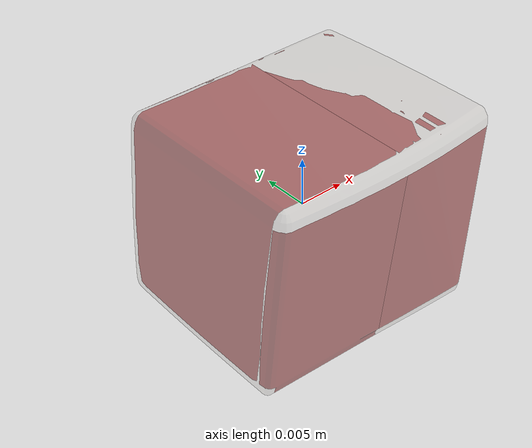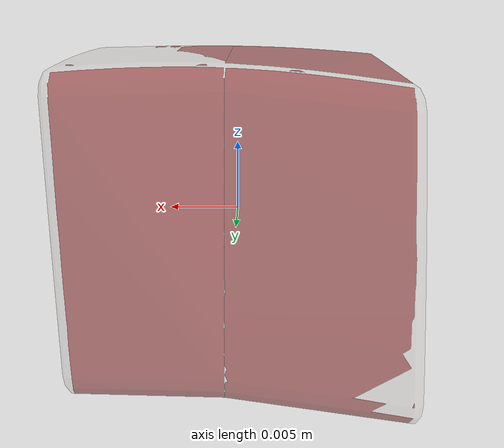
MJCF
<mujoco model="model">
  <compiler angle="radian"/>
  <asset>
    <mesh file="visual/IceCube003.obj" name="IceCube003_vis"/>
    <texture file="visual/T_BC001.png" name="IceCube003_material" type="2d"/>
    <material name="IceCube003_material" rgba="1 1 1 0.22272731363773346" texture="IceCube003_material" shininess="0.4472135901451111" specular="0.3103448502657381"/>
    <mesh file="collision/collision_mesh_collision_0.obj" name="IceCube003_collision_mesh_0"/>
    <mesh file="collision/collision_mesh_collision_1.obj" name="IceCube003_collision_mesh_1"/>
  </asset>
  <default>
    <default class="visual">
      <geom conaffinity="0" contype="0" group="1" type="mesh"/>
    </default>
    <default class="collision">
      <geom group="0" rgba="0.5 0 0 0.5"/>
    </default>
    <default class="spawn">
      <geom group="0" rgba="1 1 1 0.5" contype="0" conaffinity="0"/>
      <site group="0" rgba="1 1 1 0.5"/>
    </default>
    <default class="region">
      <geom group="1" conaffinity="0" contype="0" rgba="0 1 0 0" mass="0"/>
    </default>
  </default>
  <worldbody>
    <body>
      <body name="object">
        <geom mesh="IceCube003_vis" type="mesh" solimp="0.998 0.998 0.001" solref="0.001 1" density="100" friction="0.95 0.3 0.1" class="visual" material="IceCube003_material"/>
        <geom class="region" name="reg_bbox" type="box" pos="6.349999999996983e-07 0.0 0.0" size="0.012367864999999999 0.0122495 0.011613"/>
        <geom mesh="IceCube003_collision_mesh_0" type="mesh" class="collision"/>
        <geom mesh="IceCube003_collision_mesh_1" type="mesh" class="collision"/>
      </body>
    </body>
  </worldbody>
  <actuator/>
</mujoco>
